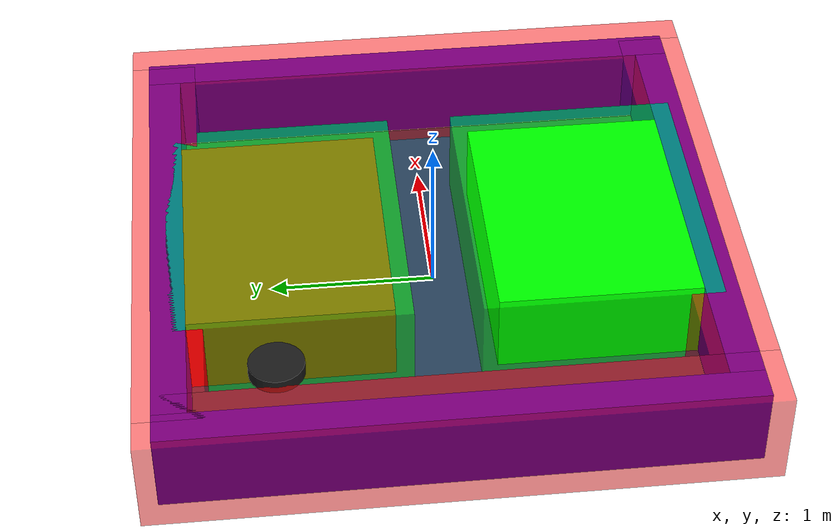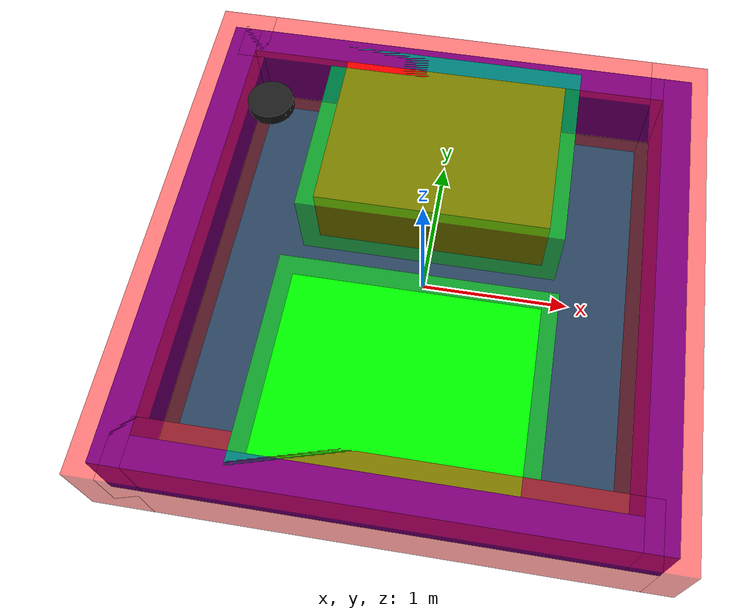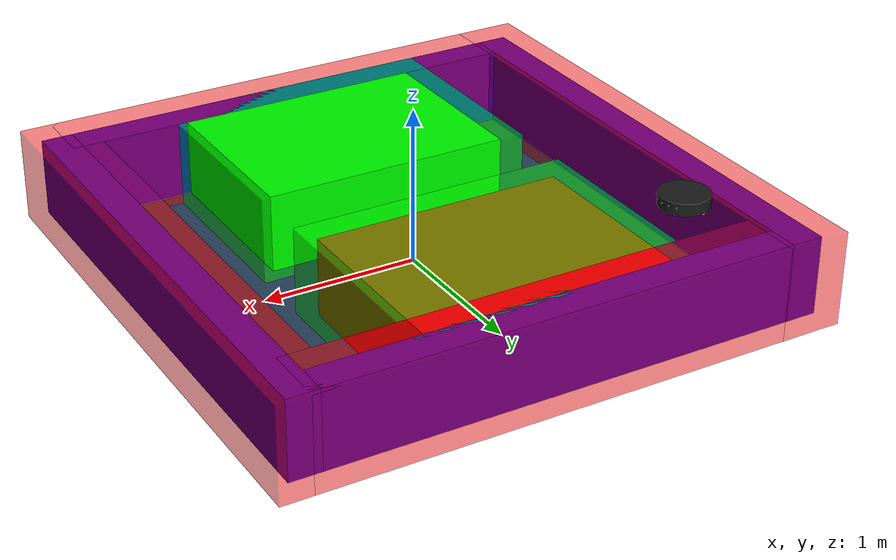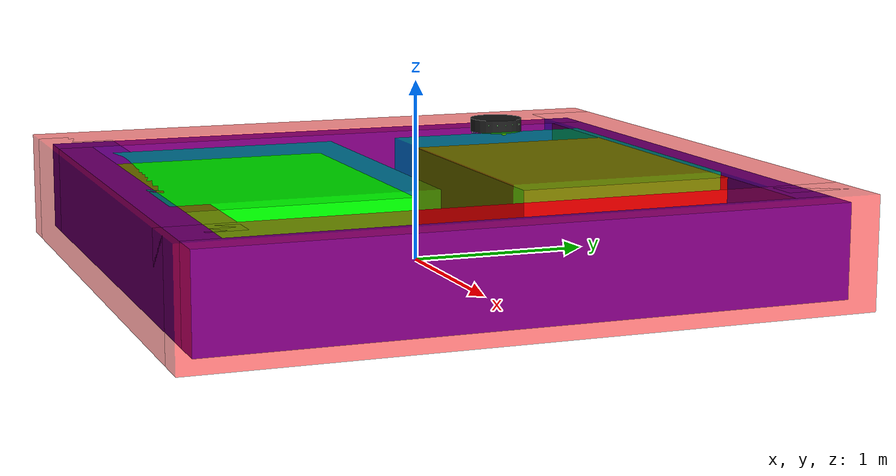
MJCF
<mujoco>

    <default>
        <default class="inner_wall_touch_site">
            <site type="box" size="0.9 0.7 0.3" pos="0 0 0" rgba="0 1 0 0.5"/>
        </default>
        <default class="out_wall_touch_site_1">
            <site type="box" size="1.6 0.2 0.3" pos="0 0 0" rgba="1 0 0 0.5"/>
        </default>
        <default class="out_wall_touch_site_2">
            <site type="box" size="0.2 1.8 0.3" pos="0 0 0" rgba="1 0 0 0.5"/>
        </default>
    </default>

    <asset>
        <texture name="grid" type="2d" builtin="checker" width="512" height="512" rgb1=".1 .2 .3" rgb2=".2 .3 .4"/>
        <material name="grid" texture="grid" texrepeat="1 1" texuniform="true" reflectance=".2"/>
    </asset>

    <worldbody>
        <light cutoff="100" diffuse="1 1 1" dir="-0 0 -1.3" directional="true" exponent="1" pos="0 0 1.3" specular=".1 .1 .1" />

        <!-- ルンバ関連 -->
        <body pos="-1.25 1 0.55">
            <freejoint />
            <geom name="main_body" type="cylinder" size=".16 .040 " rgba="0.1 0.1 0.1 1" pos="0 0 0" />

            <!-- センサ関連 -->
            <site name="sensor_right_01" type="box" size="0.003 0.003 0.003" pos="0.13 -0.1 0.01" zaxis="1 -1 0" rgba=".5 1 .5 1"/>
            <site name="sensor_right_02" type="box" size="0.003 0.003 0.003" pos="0.15 -0.05 0.01" zaxis="1 -0.5 0" rgba=".5 1 .5 1"/>
            <site name="sensor_front" type="box" size="0.003 0.003 0.003" pos="0.16 0 0.01" zaxis="1 0 0" rgba=".5 1 .5 1"/>
            <site name="sensor_left_01" type="box" size="0.003 0.003 0.003" pos="0.13 0.1 0.01" zaxis="1 1 0" rgba=".5 1 .5 1"/>
            <site name="sensor_left_02" type="box" size="0.003 0.003 0.003" pos="0.15 0.05 0.01" zaxis="1 0.5 0" rgba=".5 1 .5 1"/>

            <!-- 車輪 -->
            <body name="left wheel" pos="-0.04 .13 -.02" zaxis="0 1 0">
                <joint name="left wheel joint" type="hinge" axis="0 0 1" limited="false" />
                <geom type="cylinder" size=".036 .01" rgba=".5 .5 1 1" />
                <site type="box" rgba="1 1 1 1" size=".006 .036 .012" />
            </body>

            <body name="right wheel" pos="-0.04 -.13 -.02" zaxis="0 1 0">
                <joint name="right wheel joint" type="hinge" axis="0 0 1" limited="false" />
                <geom type="cylinder" size=".036 .01" rgba=".5 .5 1 1" />
                <site type="box" rgba="1 1 1 1" size=".006 .036 .012" />
            </body>

            <body name="flont_ball" pos=".13 0 -.035">
                <joint type="ball" limited="false" />
                <geom type="sphere" size=".02" rgba=".8 .8 0 1" />
                <site type="box" rgba="1 0 0 1" size=".006 .02 .006" />
            </body>

            <camera name = "tracking_camera" mode = "track" pos = "-0.4 0 0.8" euler = "0 -30 -90" fovy = "60"/>
        </body>

        <!-- 以下ステージ関連 -->
        <geom type="plane" size="1.5 1.5 .01" material="grid"/>

        <!-- 内壁関連 -->
        <body name = "wall_1" pos="0 0.9 0.25">
            <geom name = "wall_1_geom" type="box" size="0.8 0.60 0.25" rgba="1 0 0 1"/>
            <site name="inner_wall_touch_1" class = "inner_wall_touch_site"/>
        </body>
        <body name = "wall_2" pos="0 -0.9 0.25">
            <geom name = "wall_2_geom" type="box" size="0.8 0.60 0.25" rgba="0 1 0 1"/>
            <site name="inner_wall_touch_2" class = "inner_wall_touch_site"/>
        </body>

        <!-- 外壁関連 -->
        <body name = "out_wall_1" pos="0 1.6 0.25">
            <geom name = "out_wall_1_geom" type="box" size="1.5 0.1 0.25" rgba="0 0 1 1"/>
            <site name="out_wall_touch_1" class = "out_wall_touch_site_1"/>
        </body>
        <body name = "out_wall_2" pos="0 -1.6 0.25">
            <geom name = "out_wall_2_geom" type="box" size="1.5 0.1 0.25" rgba="0 0 1 1"/>
            <site name="out_wall_touch_2" class = "out_wall_touch_site_1"/>
        </body>
        <body name = "out_wall_3" pos="-1.6 0 0.25">
            <geom name = "out_wall_3_geom" type="box" size="0.1 1.7 0.25" rgba="0 0 1 1"/>
            <site name="out_wall_touch_3" class = "out_wall_touch_site_2"/>
        </body>
        <body name = "out_wall_4" pos="1.6 0 0.25">
            <geom name = "out_wall_4_geom" type="box" size="0.1 1.7 0.25" rgba="0 0 1 1"/>
            <site name="out_wall_touch_4" class = "out_wall_touch_site_2"/>
        </body>

    </worldbody>

    <!-- アクチュエータ -->
    <actuator>
        <motor name="right" joint="right wheel joint" />
        <motor name="left" joint="left wheel joint" />
    </actuator>

    <!-- センサ -->
    <sensor>
        <rangefinder name="right_rangefinder_1" site="sensor_right_01"/>
        <rangefinder name="right_rangefinder_2" site="sensor_right_02"/>
        <rangefinder name="left_rangefinder_1" site="sensor_left_01"/>
        <rangefinder name="left_rangefinder_2" site="sensor_left_02"/>
        <rangefinder name="front_rangefinder" site="sensor_front"/>

        <touch name="inner_touch_sensor_1" site="inner_wall_touch_1"/>
        <touch name="inner_touch_sensor_2" site="inner_wall_touch_2"/>
        <touch name="out_touch_sensor_1" site="out_wall_touch_1"/>
        <touch name="out_touch_sensor_2" site="out_wall_touch_2"/>
        <touch name="out_touch_sensor_3" site="out_wall_touch_3"/>
        <touch name="out_touch_sensor_4" site="out_wall_touch_4"/>

    </sensor>
</mujoco>
